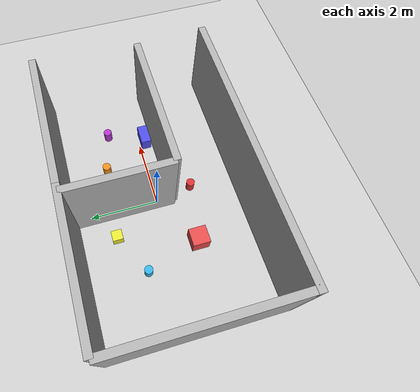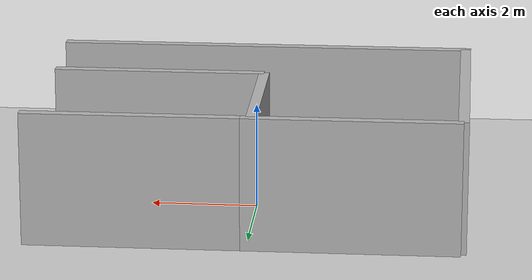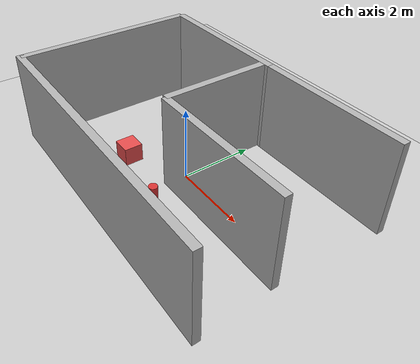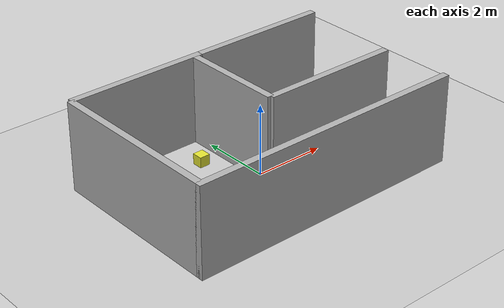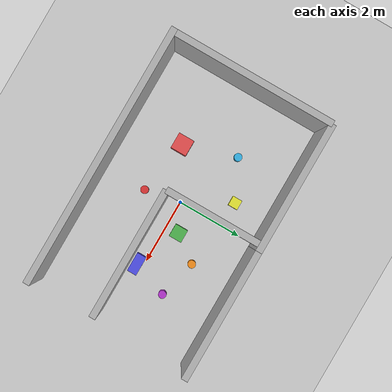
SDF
<?xml version="1.0"?>
<sdf version="1.6">
  <world name="lab_office">

    <include>
      <uri>model://ground_plane</uri>
    </include>

    <include>
      <uri>model://sun</uri>
    </include>

    <gravity>0 0 -9.8</gravity>

    <model name="wall_1_long_bottom">
      <static>true</static>
      <link name="link">
        <collision name="collision">
          <geometry>
            <box>
              <size>8 0.2 2.5</size>
            </box>
          </geometry>
        </collision>
        <visual name="visual">
          <geometry>
            <box>
              <size>8 0.2 2.5</size>
            </box>
          </geometry>
          <material>
            <ambient>0.7 0.7 0.7 1</ambient>
            <diffuse>0.7 0.7 0.7 1</diffuse>
          </material>
        </visual>
      </link>
      <pose>0 -2.5 1.25 0 0 0</pose>
    </model>

    <model name="wall_2_long_left">
      <static>true</static>
      <link name="link">
        <collision name="collision">
          <geometry>
            <box>
              <size>0.2 5 2.5</size>
            </box>
          </geometry>
        </collision>
        <visual name="visual">
          <geometry>
            <box>
              <size>0.2 5 2.5</size>
            </box>
          </geometry>
          <material>
            <ambient>0.7 0.7 0.7 1</ambient>
            <diffuse>0.7 0.7 0.7 1</diffuse>
          </material>
        </visual>
      </link>
      <pose>-3.9 0 1.25 0 0 0</pose>
    </model>

    <model name="wall_3_short_top_left">
      <static>true</static>
      <link name="link">
        <collision name="collision">
          <geometry>
            <box>
              <size>4 0.2 2.5</size>
            </box>
          </geometry>
        </collision>
        <visual name="visual">
          <geometry>
            <box>
              <size>4 0.2 2.5</size>
            </box>
          </geometry>
          <material>
            <ambient>0.7 0.7 0.7 1</ambient>
            <diffuse>0.7 0.7 0.7 1</diffuse>
          </material>
        </visual>
      </link>
      <pose>-1.9 2.5 1.25 0 0 0</pose>
    </model>

    <model name="wall_4_short_top_right">
      <static>true</static>
      <link name="link">
        <collision name="collision">
          <geometry>
            <box>
              <size>4 0.2 2.5</size>
            </box>
          </geometry>
        </collision>
        <visual name="visual">
          <geometry>
            <box>
              <size>4 0.2 2.5</size>
            </box>
          </geometry>
          <material>
            <ambient>0.7 0.7 0.7 1</ambient>
            <diffuse>0.7 0.7 0.7 1</diffuse>
          </material>
        </visual>
      </link>
      <pose>2.1 2.5 1.25 0 0 0</pose>
    </model>

    <model name="wall_5_inner_vertical">
      <static>true</static>
      <link name="link">
        <collision name="collision">
          <geometry>
            <box>
              <size>0.2 3 2.5</size>
            </box>
          </geometry>
        </collision>
        <visual name="visual">
          <geometry>
            <box>
              <size>0.2 3 2.5</size>
            </box>
          </geometry>
          <material>
            <ambient>0.7 0.7 0.7 1</ambient>
            <diffuse>0.7 0.7 0.7 1</diffuse>
          </material>
        </visual>
      </link>
      <pose>-0.1 1.0 1.25 0 0 0</pose>
    </model>

    <model name="wall_6_inner_horizontal">
      <static>true</static>
      <link name="link">
        <collision name="collision">
          <geometry>
            <box>
              <size>4 0.2 2.5</size>
            </box>
          </geometry>
        </collision>
        <visual name="visual">
          <geometry>
            <box>
              <size>4 0.2 2.5</size>
            </box>
          </geometry>
          <material>
            <ambient>0.7 0.7 0.7 1</ambient>
            <diffuse>0.7 0.7 0.7 1</diffuse>
          </material>
        </visual>
      </link>
      <pose>1.9 -0.5 1.25 0 0 0</pose>
    </model>

    <model name="box_obstacle_1">
      <static>true</static>
      <link name="link">
        <collision name="collision">
          <geometry>
            <box>
              <size>0.5 0.5 0.5</size>
            </box>
          </geometry>
        </collision>
        <visual name="visual">
          <geometry>
            <box>
              <size>0.5 0.5 0.5</size>
            </box>
          </geometry>
          <material>
            <ambient>0.9 0.3 0.3 1</ambient>
            <diffuse>0.9 0.3 0.3 1</diffuse>
          </material>
        </visual>
      </link>
      <pose>-1.5 -0.8 0.25 0 0 0</pose>
    </model>

    <model name="box_obstacle_2">
      <static>true</static>
      <link name="link">
        <collision name="collision">
          <geometry>
            <box>
              <size>0.4 0.4 0.6</size>
            </box>
          </geometry>
        </collision>
        <visual name="visual">
          <geometry>
            <box>
              <size>0.4 0.4 0.6</size>
            </box>
          </geometry>
          <material>
            <ambient>0.3 0.7 0.3 1</ambient>
            <diffuse>0.3 0.7 0.3 1</diffuse>
          </material>
        </visual>
      </link>
      <pose>0.8 0.4 0.3 0 0 0</pose>
    </model>

    <model name="box_obstacle_3">
      <static>true</static>
      <link name="link">
        <collision name="collision">
          <geometry>
            <box>
              <size>0.6 0.3 0.4</size>
            </box>
          </geometry>
        </collision>
        <visual name="visual">
          <geometry>
            <box>
              <size>0.6 0.3 0.4</size>
            </box>
          </geometry>
          <material>
            <ambient>0.3 0.3 0.9 1</ambient>
            <diffuse>0.3 0.3 0.9 1</diffuse>
          </material>
        </visual>
      </link>
      <pose>2.2 -0.2 0.2 0 0 0</pose>
    </model>

    <model name="box_obstacle_4">
      <static>true</static>
      <link name="link">
        <collision name="collision">
          <geometry>
            <box>
              <size>0.3 0.3 0.3</size>
            </box>
          </geometry>
        </collision>
        <visual name="visual">
          <geometry>
            <box>
              <size>0.3 0.3 0.3</size>
            </box>
          </geometry>
          <material>
            <ambient>0.9 0.9 0.2 1</ambient>
            <diffuse>0.9 0.9 0.2 1</diffuse>
          </material>
        </visual>
      </link>
      <pose>-0.8 1.4 0.15 0 0 0</pose>
    </model>

    <model name="can_obstacle_1">
      <static>true</static>
      <link name="link">
        <collision name="collision">
          <geometry>
            <cylinder>
              <radius>0.12</radius>
              <length>0.35</length>
            </cylinder>
          </geometry>
        </collision>
        <visual name="visual">
          <geometry>
            <cylinder>
              <radius>0.12</radius>
              <length>0.35</length>
            </cylinder>
          </geometry>
          <material>
            <ambient>0.95 0.55 0.1 1</ambient>
            <diffuse>0.95 0.55 0.1 1</diffuse>
          </material>
        </visual>
      </link>
      <pose>1.4 1.2 0.175 0 0 0</pose>
    </model>

    <model name="can_obstacle_2">
      <static>true</static>
      <link name="link">
        <collision name="collision">
          <geometry>
            <cylinder>
              <radius>0.12</radius>
              <length>0.35</length>
            </cylinder>
          </geometry>
        </collision>
        <visual name="visual">
          <geometry>
            <cylinder>
              <radius>0.12</radius>
              <length>0.35</length>
            </cylinder>
          </geometry>
          <material>
            <ambient>0.85 0.2 0.2 1</ambient>
            <diffuse>0.85 0.2 0.2 1</diffuse>
          </material>
        </visual>
      </link>
      <pose>0.2 -1.1 0.175 0 0 0</pose>
    </model>

    <model name="can_obstacle_3">
      <static>true</static>
      <link name="link">
        <collision name="collision">
          <geometry>
            <cylinder>
              <radius>0.12</radius>
              <length>0.35</length>
            </cylinder>
          </geometry>
        </collision>
        <visual name="visual">
          <geometry>
            <cylinder>
              <radius>0.12</radius>
              <length>0.35</length>
            </cylinder>
          </geometry>
          <material>
            <ambient>0.2 0.7 0.9 1</ambient>
            <diffuse>0.2 0.7 0.9 1</diffuse>
          </material>
        </visual>
      </link>
      <pose>-2.0 0.8 0.175 0 0 0</pose>
    </model>

    <model name="can_obstacle_4">
      <static>true</static>
      <link name="link">
        <collision name="collision">
          <geometry>
            <cylinder>
              <radius>0.12</radius>
              <length>0.35</length>
            </cylinder>
          </geometry>
        </collision>
        <visual name="visual">
          <geometry>
            <cylinder>
              <radius>0.12</radius>
              <length>0.35</length>
            </cylinder>
          </geometry>
          <material>
            <ambient>0.7 0.2 0.8 1</ambient>
            <diffuse>0.7 0.2 0.8 1</diffuse>
          </material>
        </visual>
      </link>
      <pose>2.6 0.9 0.175 0 0 0</pose>
    </model>

  </world>
</sdf>
